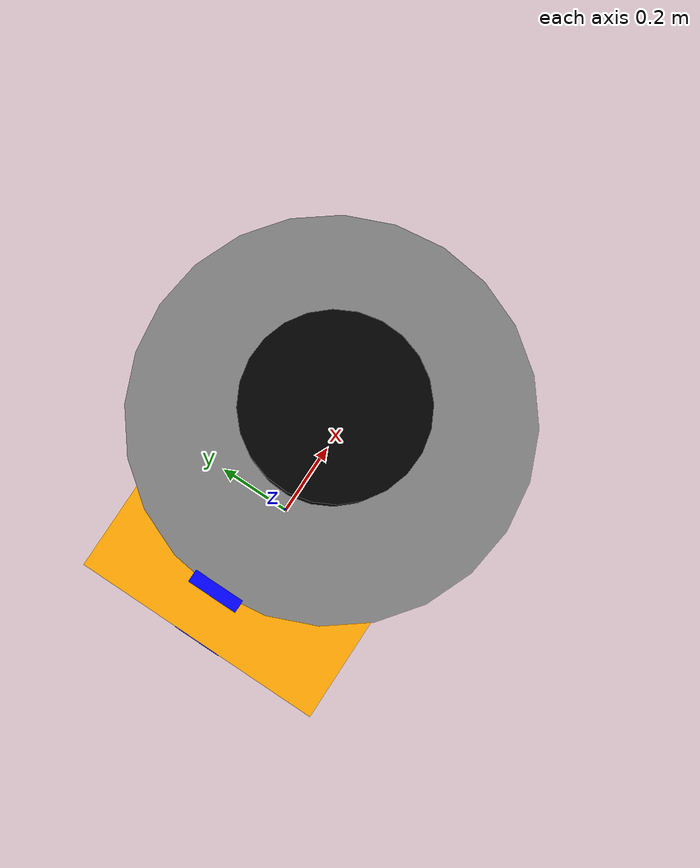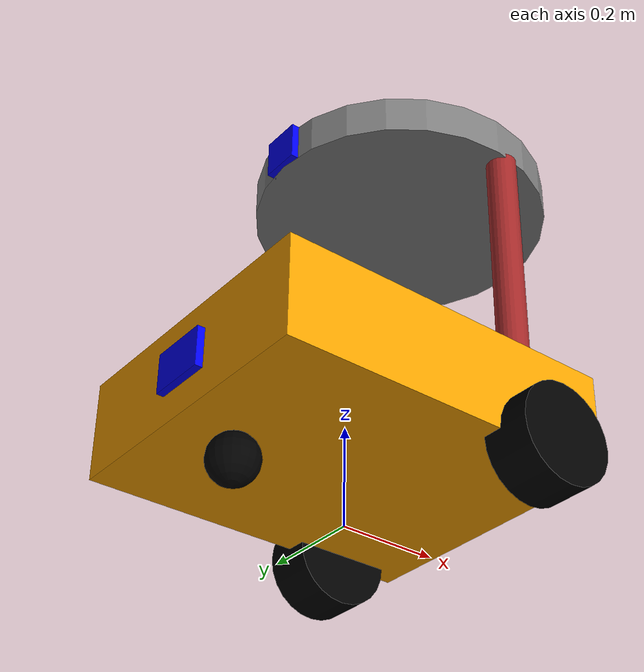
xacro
<?xml version="1.0"?>
<robot name="Robo_car" xmlns:xacro="http://www.ros.org/wiki/xacro">

  <xacro:include filename="sensor.xacro"/>
  <xacro:include filename="plugin.xacro"/>

  <material name="orange">
    <color rgba="1 0.647 0 1" />
  </material>
  <material name="white">
    <color rgba="0 0 1 1" />
  </material>
  <material name="brown">
    <color rgba="0.647 0.165 0.165 1" />
  </material>
  <material name="grey">
    <color rgba="0.5 0.5 0.5 1" />
  </material>
  <material name="black">
    <color rgba="0 0 0 1" />
  </material>

  <link name="base_footprint" />
  <link name="top_of_box" />

  <link name="base_link">
    <visual>
      <origin xyz="0 0 ${0.05 * scale}" rpy="0 0 0" />
      <geometry>
        <box size="${0.35 * scale} ${0.3 * scale} ${0.1 * scale}"/>
      </geometry>
      <material name="orange" />
    </visual>
    <collision>
      <origin xyz="0 0 ${0.05 * scale}" rpy="0 0 0" />
      <geometry>
        <box size="${0.35 * scale} ${0.3 * scale} ${0.1 * scale}"/>
      </geometry>
    </collision>
    <inertial>
      <mass value="5"/>
      <origin xyz="0 0 0" rpy="0 0 0" />
      <inertia ixx="0.0467" ixy="0" ixz="0" iyy="0.05521" izz="0.08854" iyz="0" />
    </inertial>
  </link>

  <link name="right_wheel_link">
    <visual>
      <geometry>
        <cylinder radius="${0.05 * scale}" length="${0.05 * scale}" />
      </geometry>
      <material name="black"/>
    </visual>
    <collision>
      <geometry>
        <cylinder radius="${0.05 * scale}" length="${0.05 * scale}" />
      </geometry>
    </collision>
    <inertial>
      <mass value="1"/>
      <origin xyz="0 0 0" rpy="0 0 0" />
      <inertia ixx="0.0083" ixy="0" ixz="0" iyy="0.0083" izz="0.00125" iyz="0" />
    </inertial>
  </link>

  <link name="left_wheel_link">
    <visual>
      <geometry>
        <cylinder radius="${0.05 * scale}" length="${0.05 * scale}" />
      </geometry>
      <material name="black" />
    </visual>
    <collision>
      <geometry>
        <cylinder radius="${0.05 * scale}" length="${0.05 * scale}" />
      </geometry>
    </collision>
    <inertial>
      <mass value="1"/>
      <origin xyz="0 0 0" rpy="0 0 0" />
      <inertia ixx="0.0083" ixy="0" ixz="0" iyy="0.0083" izz="0.00125" iyz="0" />
    </inertial>
  </link>

  <link name="castor_wheel">
    <visual>
      <geometry>
        <sphere radius="${0.025 * scale}" />
      </geometry>
      <material name="black"/>
    </visual>
    <collision>
      <geometry>
        <sphere radius="${0.025 * scale}" />
      </geometry>
    </collision>
    <inertial>
      <mass value="1"/>
      <origin xyz="0 0 0" rpy="0 0 0" />
      <inertia ixx="0.00041" ixy="0" ixz="0" iyy="0.00041" izz="0.00014" iyz="0" />
    </inertial>
  </link>

  <link name="roof_link">
    <visual>
      <origin xyz="0 0 ${0.04 * scale}" rpy="0 0 0" />
      <geometry>
        <cylinder radius="${0.15 * scale}" length="${0.04 * scale}" />
      </geometry>
      <material name="grey" />
    </visual>
    <collision>
      <origin xyz="0 0 ${0.04 * scale}" rpy="0 0 0" />
      <geometry>
        <box size="${0.17 * scale} ${0.17 * scale} ${0.08 * scale}" />
      </geometry>
    </collision>
    <inertial>
      <mass value="0.2"/>
      <origin xyz="0 0 0" rpy="0 0 0" />
      <inertia ixx="0.00723" ixy="0" ixz="0" iyy="0.00468" izz="0.00468" iyz="0" />
    </inertial>
  </link>

  <link name="pillar_1_link">
    <visual>
      <origin xyz="0 0 ${0.1 * scale}" rpy="0 0 0"/>
      <geometry>
        <cylinder radius="${0.015 * scale}" length="${0.23 * scale}"/>
      </geometry>
      <material name="brown" />
    </visual>
    <collision>
      <origin xyz="0 0 ${0.1 * scale}" rpy="0 0 0"/>
      <geometry>
        <cylinder radius="${0.015 * scale}" length="${0.23 * scale}"/>
      </geometry>
    </collision>
    <inertial>
      <mass value="0.2"/>
      <origin xyz="0 0 0" rpy="0 0 0" />
      <inertia ixx="0.00336" ixy="0" ixz="0" iyy="0.00336" izz="0.000005" iyz="0" />
    </inertial>
  </link>

  <link name="pillar_2_link">
    <visual>
      <origin xyz="0 0 ${0.1 * scale}" rpy="0 0 0"/>
      <geometry>
        <cylinder radius="${0.015 * scale}" length="${0.25 * scale}"/>
      </geometry>
      <material name="brown" />
    </visual>
    <collision>
      <origin xyz="0 0 ${0.1 * scale}" rpy="0 0 0"/>
      <geometry>
        <cylinder radius="${0.015 * scale}" length="${0.23 * scale}"/>
      </geometry>
    </collision>
    <inertial>
      <mass value="0.2"/>
      <origin xyz="0 0 0" rpy="0 0 0" />
      <inertia ixx="0.00336" ixy="0" ixz="0" iyy="0.00336" izz="0.000005" iyz="0" />
    </inertial>
  </link>

  <joint name="base_TopOfBox_joint" type="fixed">
    <parent link="base_link"/>
    <child link="top_of_box"/>
    <origin xyz="0 0 ${0.1 * scale}" rpy="0 0 0"/>
  </joint>

  <joint name="castor_base_joint" type="fixed">
    <parent link="base_link"/>
    <child link="castor_wheel"/>
    <origin xyz="${-0.12 * scale} 0 ${-0.025 * scale}" rpy="0 0 0"/>
  </joint>

  <joint name="baseLink_footPrint_joint" type="fixed">
    <parent link="base_footprint"/>
    <child link="base_link"/>
    <origin xyz="0 0 ${0.05 * scale}" rpy="0 0 0"/>
  </joint>

  <joint name="right_wheel_joint" type="continuous">
    <parent link="base_link" />
    <child link="right_wheel_link" />
    <origin xyz="${0.1 * scale} ${-0.155 * scale} 0" rpy="1.57 0 0"/>
    <axis xyz="0 0 1" />
  </joint>

  <joint name="left_wheel_joint" type="continuous">
    <parent link="base_link" />
    <child link="left_wheel_link" />
    <origin xyz="${0.1 * scale} ${0.155 * scale} 0" rpy="1.57 0 0" />
    <axis xyz="0 0 1" />
  </joint>

  <joint name="pillar_1_joint" type="fixed">
    <parent link="top_of_box"/>
    <child link="pillar_1_link"/>
    <origin xyz="${0.0875 * scale} ${0.135 * scale} 0" rpy="0 0 0"/>
  </joint>

  <joint name="pillar_2_joint" type="fixed">
    <parent link="top_of_box"/>
    <child link="pillar_2_link"/>
    <origin xyz="${0.0875 * scale} ${-0.135 * scale} 0" rpy="0 0 0"/>
  </joint>

  <joint name="roof_joint" type="fixed">
    <parent link="top_of_box"/>
    <child link="roof_link"/>
    <origin xyz="${0.07 * scale} 0 ${0.2 * scale}" rpy="0 0 0"/>
  </joint>

</robot>

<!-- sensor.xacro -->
<robot xmlns:xacro="http://www.ros.org/wiki/xacro" name="scaled_robot">

  <xacro:property name="scale" value="2.0"/>

  <link name="LIDAR_link">
    <visual>
      <geometry>
        <cylinder radius="${0.065 * scale}" length="${0.04 * scale}"/>
      </geometry>
      <origin xyz="0 0 0" rpy="0 0 ${0.04 * scale}"/>
      <material name="black"/>
    </visual>
    <collision>
      <geometry>
        <box size="${0.13 * scale} ${0.13 * scale} ${0.08 * scale}"/>
      </geometry>
      <origin xyz="0 0 0" rpy="0 0 ${0.04 * scale}"/>
    </collision>
    <inertial>
      <mass value="${0.01 * scale}"/>
      <origin xyz="0 0 0.0" rpy="0 0 0" />
      <inertia ixx="0.00159" ixy="0" ixz="0" iyy="0.00159" izz="0.00211" iyz="0" />
    </inertial>
  </link>

  <link name="camera_link">
    <visual>
      <geometry>
        <box size="${0.01 * scale} ${0.04 * scale} ${0.04 * scale}"/>
      </geometry>
      <origin xyz="0 0 0" rpy="0 0 0"/>
      <material name="white"/>
    </visual>
    <collision>
      <geometry>
        <box size="${0.02 * scale} ${0.04 * scale} ${0.04 * scale}"/>
      </geometry>
      <origin xyz="0 0 0" rpy="0 0 0"/>
    </collision>
    <inertial>
      <mass value="${0.01 * scale}"/>
      <origin xyz="0 0 0.0" rpy="0 0 0" />
      <inertia ixx="0.00013" ixy="0" ixz="0" iyy="0.00013" izz="0.00013" iyz="0" />
    </inertial>
  </link>

  <link name="depth_camera_link">
    <visual>
      <geometry>
        <box size="${0.015 * scale} ${0.06 * scale} ${0.04 * scale}"/>
      </geometry>
      <origin xyz="0 0 0" rpy="0 0 0"/>
      <material name="white"/>
    </visual>
    <collision>
      <geometry>
        <box size="${0.02 * scale} ${0.04 * scale} ${0.04 * scale}"/>
      </geometry>
      <origin xyz="0 0 0" rpy="0 0 0"/>
    </collision>
    <inertial>
      <mass value="${0.01 * scale}"/>
      <origin xyz="0 0 0.0" rpy="0 0 0" />
      <inertia ixx="0.00013" ixy="0" ixz="0" iyy="0.00013" izz="0.00013" iyz="0" />
    </inertial>
  </link>

  <link name="camera_link_optical"/>

   <joint name="camera_optical_joint" type="fixed">
      <origin xyz="0 0 0" rpy="${-pi/2.0} 0 ${-pi/2.0}"/>
      <parent link="camera_link"/>
      <child link="camera_link_optical"/>
    </joint>

  <joint name="LIDAR_joint" type="fixed">
    <parent link="roof_link"/>
    <child link="LIDAR_link"/>
    <origin xyz="0 0 ${0.0825 * scale}" rpy="0 0 0" />
  </joint>

  <joint name="camera_joint" type="fixed">
    <parent link="roof_link"/>
    <child link="camera_link"/>
    <origin xyz="${-0.15 * scale} 0 ${0.04 * scale}" rpy="0 0 3.14"/>
  </joint>

  <joint name="depth_camera_joint" type="fixed">
    <parent link="base_link"/>
    <child link="depth_camera_link"/>
    <origin xyz="${-0.175 * scale} 0 ${0.05 * scale}" rpy="0 0 3.14"/>
  </joint>

    <gazebo reference="camera_link">
        <sensor name="camera" type="camera">
        <topic>image</topic>
        <update_rate>5</update_rate>
        <always_on>1</always_on>
        <visualize>true</visualize>
        <camera>
            <pose>0 0 0 0 0 3.14</pose>
            <optical_frame_id>camera_link_optical</optical_frame_id>
            <camera_info_topic>camera_info</camera_info_topic>
            <horizontal_fov>.75</horizontal_fov>
            <image>
            <width>640</width>
            <height>480</height>
            </image>
            <clip>
            <near>0.2</near>
            <far>20</far>
            </clip>
            <save enabled='true'>
            <path>/tmp/cam</path>
            </save>
            <noise>
            <type>gaussian</type>
            <mean>0.0</mean>
            <stddev>0.0</stddev>
            </noise>
            <distortion>
            <k1>0.1</k1>
            <k2>0.2</k2>
            <k3>0.3</k3>
            <p1>0.4</p1>
            <p2>0.5</p2>
            <center>0.2 0.4</center>
            </distortion>
            <lens>
            <type>custom</type>
            <scale_to_hfov>false</scale_to_hfov>
            <custom_function>
                <c1>1.1</c1>
                <c2>2.2</c2>
                <c3>3.3</c3>
                <f>1.2</f>
                <fun>sin</fun>
            </custom_function>
            <cutoff_angle>0.7505</cutoff_angle>
            <env_texture_size>128</env_texture_size>
            <intrinsics>
                <fx>280</fx>
                <fy>281</fy>
                <cx>320</cx>
                <cy>240</cy>
                <s>0.0</s>
            </intrinsics>
            <projection>
                <p_fx>282</p_fx>
                <p_fy>283</p_fy>
                <p_cx>320</p_cx>
                <p_cy>240</p_cy>
                <tx>0</tx>
                <ty>0</ty>
            </projection>
            </lens>
        </camera>
        </sensor>
    </gazebo>

    <gazebo reference="LIDAR_link">
  <sensor name='gpu_lidar' type='gpu_lidar'>
    <pose relative_to='LIDAR_link'>0 0 0 0 0 0</pose>
    <topic>scan</topic>
    <update_rate>5</update_rate>
    <ray>
        <scan>
            <horizontal>
                <samples>360</samples>
                <resolution>1</resolution>
                <min_angle>-3.14</min_angle>
                <max_angle>3.14</max_angle>
            </horizontal>
        </scan>
        <range>
            <min>0.5</min>
            <max>1.0</max>
            <resolution>0.05</resolution>
        </range>
        <noise>
          <type>gaussian</type>
          <mean>0.0</mean>
          <stddev>0.001</stddev>
        </noise>
    </ray>

    <always_on>1</always_on>
    <visualize>true</visualize>
</sensor>
</gazebo>

<link name="imu_link"/>
<joint name="base_imu_joint" type="fixed">
  <parent link="base_link"/>
  <child link="imu_link"/>
  <origin xyz="0 0 0" rpy="0 0 0"/>
</joint>
      <gazebo reference="imu_link">
      <sensor name='imu_sensor' type='imu'>
       <topic>imu</topic>
       <update_rate>5</update_rate>
       <always_on>1</always_on>
       <visualize>true</visualize>
     </sensor>
      </gazebo>

</robot>
